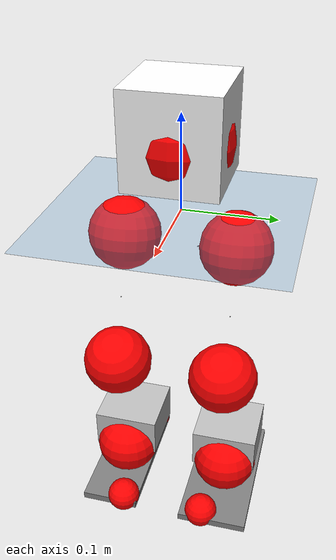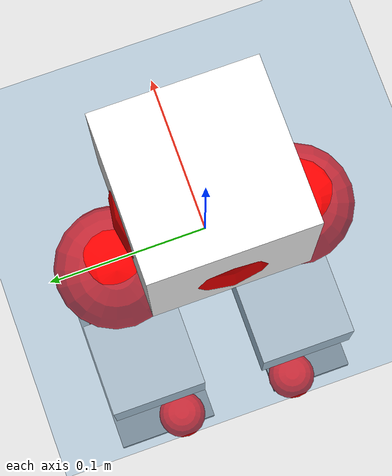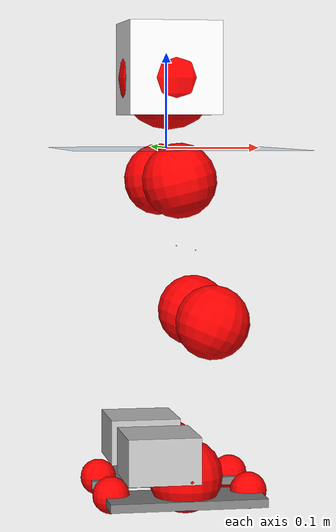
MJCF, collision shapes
<mujoco model="pi_12dof_release_v1">
  <compiler angle="radian" assetdir="assets" balanceinertia="true" inertiafromgeom="false"/>

  <option timestep="0.005" density="1.2" viscosity="2e-05"/>

  <size nkey="1"/>

  <visual>
    <quality shadowsize="8192"/>
    <map shadowclip="0.5"/>
  </visual>

  <default>
    <default class="/">
      <joint armature="0.01" damping="0.01" frictionloss="0.01"/>
      <geom contype="0" conaffinity="0" group="1" solref="-1000 -80"/>
      <site size="0.01 0.005 0.005" group="5"/>
      <general forcelimited="true" biastype="affine" gainprm="20" biasprm="0 -20 -0.5"/>
      <default class="foot">
        <geom size="0.0845 0.036 0.005" type="box" condim="6" group="4" priority="1" friction="0.9 0.2 0.2" solimp="0.015 1 0.005"/>
      </default>
      <default class="reward_collision_sphere">
        <geom group="5" rgba="1 0 0 1"/>
      </default>
    </default>
  </default>

  <asset>
    <texture type="skybox" colorspace="auto" name="//unnamed_texture_0" builtin="gradient" rgb1="0.95 0.95 0.95" rgb2="0.95 0.95 0.95" width="100" height="600"/>
    <texture type="2d" colorspace="auto" name="texplane" builtin="checker" rgb1="0.345 0.575 0.748" rgb2="0.345 0.575 0.748" markrgb="1 1 1" width="512" height="512"/>
    <material name="MatPlane" class="/" texture="texplane" texuniform="true" texrepeat="2 2" specular="0.9"/>
    <mesh name="baselink_1" class="/" file="baselink_1.STL"/>
    <mesh name="r_hip_pitch_link" class="/" file="r_hip_pitch_link.STL"/>
    <mesh name="r_hip_roll_link" class="/" file="r_hip_roll_link.STL"/>
    <mesh name="r_thigh_link" class="/" file="r_thigh_link.STL"/>
    <mesh name="r_calf_link" class="/" file="r_calf_link.STL"/>
    <mesh name="r_ankle_pitch_link" class="/" file="r_ankle_pitch_link.STL"/>
    <mesh name="r_ankle_roll_link" class="/" file="r_ankle_roll_link.STL"/>
    <mesh name="l_hip_pitch_link" class="/" file="l_hip_pitch_link.STL"/>
    <mesh name="l_hip_roll_link" class="/" file="l_hip_roll_link.STL"/>
    <mesh name="l_thigh_link" class="/" file="l_thigh_link.STL"/>
    <mesh name="l_calf_link" class="/" file="l_calf_link.STL"/>
    <mesh name="l_ankle_pitch_link" class="/" file="l_ankle_pitch_link.STL"/>
    <mesh name="l_ankle_roll_link" class="/" file="l_ankle_roll_link.STL"/>
  </asset>

  <worldbody>
    <geom name="floor" class="/" size="100 100 0.125" type="plane" group="0" material="MatPlane"/>
    <light name="toplight_shadow" class="/" pos="0 0 5" dir="0.0990148 0.0990148 -0.990148" type="directional" ambient="0.04 0.04 0.04" diffuse="0.55 0.55 0.55" specular="0.12 0.12 0.12"/>
    <light name="toplight_fill" class="/" pos="0 0 5" dir="0.0990148 0.0990148 -0.990148" type="directional" castshadow="false" ambient="0.04 0.04 0.04" diffuse="0.3 0.3 0.3" specular="0.08 0.08 0.08"/>
    <body name="trunk" pos="0.00240496 0.00012383 -0.00116361" quat="0.999999 -0.00104742 0.000388404 0.000749663">
      <inertial pos="-5.37651e-05 0.00015166 0.0437175" quat="0.692517 0.00881086 0.0130653 0.72123" mass="1.95805" diaginertia="0.0148498 0.00254968 0.00570858"/>
      <joint name="//unnamed_joint_0" type="free"/>
      <geom name="//unnamed_geom_1" class="/" type="mesh" density="0" rgba="1 1 1 1" mesh="baselink_1"/>
      <geom name="//unnamed_geom_2" class="/" size="0.0487308 0.0487308 0.0487308" pos="0 0 0.0850576" type="box" rgba="1 1 1 1"/>
      <geom name="//unnamed_geom_3" class="reward_collision_sphere" size="0.0536038" pos="0 0 0.0744254"/>
      <site name="imu" class="/" pos="0.00163752 0.00839273 0.0136742" size="0.00974615"/>
      <camera name="track" class="/" pos="0 -1.55069 0" quat="0.707107 0.707107 0 0" mode="trackcom"/>
      <camera name="ego_camera" class="/" pos="0.0813962 0 0.19138" quat="-0.5 -0.5 0.5 0.5"/>
      <body name="r_hip_pitch_link" pos="-0.000808798 -0.0167943 -0.0338431" quat="0.99224 -0.000124712 -0.124336 0.000180772">
        <inertial pos="0.000131449 -0.0460767 0.000335374" quat="-0.0168894 0.704593 -0.0277692 0.708867" mass="0.333527" diaginertia="0.000166267 2.76536e-05 0.000112947"/>
        <joint name="r_hip_pitch_joint" class="/" pos="0 0 0" axis="-0.00557761 -0.999934 0.0100899" range="-1.77701 1.2307" armature="0.00983838" damping="0.0264244" frictionloss="0.0110011"/>
        <geom name="//unnamed_geom_4" class="/" type="mesh" density="0" rgba="0.75294 0.75294 0.75294 1" mesh="r_hip_pitch_link"/>
        <geom name="//unnamed_geom_5" class="/" size="0.000487308 0.000487308 0.000487308" type="box" rgba="0.75294 0.75294 0.75294 1"/>
        <body name="r_hip_roll_link" pos="0.00195293 -0.0440956 0.00186673" quat="0.999999 -0.00127315 -0.000296568 0.000501502">
          <inertial pos="0.00114514 -0.0023202 -0.0676217" quat="0.705716 -0.0791784 -0.0828934 0.699159" mass="0.34795" diaginertia="0.000495188 7.52816e-05 0.000173787"/>
          <joint name="r_hip_roll_joint" class="/" pos="0 0 0" axis="-0.999921 0.00386664 0.0119519" range="-0.106726 0.446913" armature="0.00947123" damping="0" frictionloss="0.0110843"/>
          <geom name="//unnamed_geom_6" class="/" type="mesh" density="0" rgba="0.75294 0.75294 0.75294 1" mesh="r_hip_roll_link"/>
          <geom name="//unnamed_geom_7" class="/" size="0.000487308 0.000487308 0.000487308" type="box" rgba="0.75294 0.75294 0.75294 1"/>
          <geom name="//unnamed_geom_8" class="reward_collision_sphere" size="0.0389846"/>
          <body name="r_thigh_link" pos="-0.00167319 -0.00239731 -0.0735323" quat="0.999999 -0.000133227 -4.34137e-05 0.00099493">
            <inertial pos="-0.00246702 0.000320578 -0.0480885" quat="0.735909 0.67708 0.000709212 -0.000866255" mass="0.104167" diaginertia="0.000188848 2.80393e-05 8.05925e-05"/>
            <joint name="r_thigh_joint" class="/" pos="0 0 0" axis="2.35261e-05 -0.000865277 -1" range="-0.355482 0.632877" armature="0.00891377" damping="0.00137504" frictionloss="0.0085868"/>
            <geom name="//unnamed_geom_9" class="/" type="mesh" density="0" rgba="0.75294 0.75294 0.75294 1" mesh="r_thigh_link"/>
            <geom name="//unnamed_geom_10" class="/" size="0.000487308 0.000487308 0.000487308" type="box" rgba="0.75294 0.75294 0.75294 1"/>
            <body name="r_calf_link" pos="-0.00149168 -0.00140803 -0.0776391" quat="0.947508 8.45366e-06 0.319729 -0.00121977">
              <inertial pos="0.00084083 -0.00356369 -0.0746398" quat="0.999967 0.00455313 4.04553e-05 -0.00668278" mass="0.745268" diaginertia="0.00501449 0.000959841 0.000225401"/>
              <joint name="r_calf_joint" class="/" pos="0 0 0" axis="0.010681 -0.999904 0.00885993" range="-1.59978 0.661515" armature="0.0101848" damping="0.00388377" frictionloss="0.011025"/>
              <geom name="//unnamed_geom_11" class="/" type="mesh" density="0" rgba="0.75294 0.75294 0.75294 1" mesh="r_calf_link"/>
              <geom name="//unnamed_geom_12" class="/" size="0.000487308 0.000487308 0.000487308" type="box" rgba="0.75294 0.75294 0.75294 1"/>
              <geom name="//unnamed_geom_13" class="reward_collision_sphere" size="0.0389846"/>
              <body name="r_ankle_pitch_link" pos="0.000975303 -0.00253942 -0.148888" quat="0.980091 -0.000226889 -0.19855 4.41357e-05">
                <inertial pos="0.0069197 0.000160747 0.000382849" quat="-0.00166033 0.70916 -0.0123676 0.704937" mass="0.164536" diaginertia="0.000458563 6.12755e-05 0.000165717"/>
                <joint name="r_ankle_pitch_joint" class="/" pos="0 0 0" axis="-0.00237542 -0.999922 0.012272" range="-1.27774 0.507212" armature="0.00970949" damping="0" frictionloss="0.0106324"/>
                <geom name="//unnamed_geom_14" class="/" type="mesh" density="0" rgba="0.75294 0.75294 0.75294 1" mesh="r_ankle_pitch_link"/>
                <geom name="//unnamed_geom_15" class="/" size="0.03801 0.0389846 0.0243654" type="box" rgba="0.75294 0.75294 0.75294 1"/>
                <body name="r_ankle_roll_link" pos="0.0821146 -0.000277804 -0.00021992" quat="1 -0.000175974 2.64063e-05 -2.26026e-05">
                  <inertial pos="-0.0261218 -0.000123757 -0.0152986" quat="0.564005 0.440102 0.428844 0.551635" mass="0.478598" diaginertia="0.00170188 0.000289531 0.000373089"/>
                  <joint name="r_ankle_roll_joint" class="/" pos="0 0 0" axis="-0.999909 -0.0132836 0.00229765" stiffness="0.00358944" range="-0.203768 0.148914" armature="0.0111151" damping="0.0145652" frictionloss="0.0096943"/>
                  <geom name="//unnamed_geom_16" class="/" type="mesh" density="0" rgba="0.75294 0.75294 0.75294 1" mesh="r_ankle_roll_link"/>
                  <geom name="//unnamed_geom_17" class="/" type="mesh" rgba="0.75294 0.75294 0.75294 1" mesh="r_ankle_roll_link"/>
                  <geom name="right_foot" class="foot" size="0.0823571 0.0335485 0.00446957" pos="-0.0553494 0 -0.0467817"/>
                  <geom name="//unnamed_geom_19" class="reward_collision_sphere" size="0.0389846" pos="-0.0542641 0 -0.0212644"/>
                  <geom name="//unnamed_geom_20" class="reward_collision_sphere" size="0.0194923" pos="0.0162792 0.0155069 -0.0425288"/>
                  <geom name="//unnamed_geom_21" class="reward_collision_sphere" size="0.0194923" pos="-0.130234 0.0155069 -0.0425288"/>
                  <site name="right_foot" class="foot" pos="-0.0553494 0 -0.0467817" size="0.00974615"/>
                </body>
              </body>
            </body>
          </body>
        </body>
      </body>
      <body name="l_hip_pitch_link" pos="0.000608545 0.0186409 -0.0369993" quat="0.992217 9.08894e-05 -0.12452 -2.1325e-05">
        <inertial pos="0.00130154 0.044378 -0.00272785" quat="-0.0427696 0.712646 0.0326825 0.699455" mass="0.368094" diaginertia="0.000189801 2.88845e-05 0.000139752"/>
        <joint name="l_hip_pitch_joint" class="/" pos="0 0 0" axis="-0.012772 0.99991 0.00412083" range="-1.24442 1.74646" armature="0.00957746" damping="0.0166807" frictionloss="0.00960335"/>
        <geom name="//unnamed_geom_22" class="/" type="mesh" density="0" rgba="0.75294 0.75294 0.75294 1" mesh="l_hip_pitch_link"/>
        <geom name="//unnamed_geom_23" class="/" size="0.000487308 0.000487308 0.000487308" type="box" rgba="0.75294 0.75294 0.75294 1"/>
        <body name="l_hip_roll_link" pos="0.000518368 0.0408414 0.00310149" quat="1 -0.000216793 0.00029077 0.000205127">
          <inertial pos="-0.00170825 -0.000214384 -0.0659545" quat="0.699713 -0.0751049 -0.0776529 0.706209" mass="0.368552" diaginertia="0.00050003 7.61617e-05 0.000178188"/>
          <joint name="l_hip_roll_joint" class="/" pos="0 0 0" axis="-0.999998 0.00186151 -0.00118711" range="-0.482556 0.17132" armature="0.00947572" damping="0.00465603" frictionloss="0.00971004"/>
          <geom name="//unnamed_geom_24" class="/" type="mesh" density="0" rgba="0.75294 0.75294 0.75294 1" mesh="l_hip_roll_link"/>
          <geom name="//unnamed_geom_25" class="/" size="0.000487308 0.000487308 0.000487308" type="box" rgba="0.75294 0.75294 0.75294 1"/>
          <geom name="//unnamed_geom_26" class="reward_collision_sphere" size="0.0389846"/>
          <body name="l_thigh_link" pos="0.000400164 3.55925e-05 -0.0758571" quat="1 3.12483e-05 0.000105565 0.000434101">
            <inertial pos="0.000379255 0.00112643 -0.0503014" quat="0.681098 0.732191 -0.000790675 -0.000112012" mass="0.104244" diaginertia="0.000184065 2.6545e-05 7.62015e-05"/>
            <joint name="l_thigh_joint" class="/" pos="0 0 0" axis="0.00220839 -0.00190936 -0.999996" stiffness="0.00330853" range="-0.594337 0.347032" armature="0.0103647" damping="0" frictionloss="0.0104939"/>
            <geom name="//unnamed_geom_27" class="/" type="mesh" density="0" rgba="0.75294 0.75294 0.75294 1" mesh="l_thigh_link"/>
            <geom name="//unnamed_geom_28" class="/" size="0.000487308 0.000487308 0.000487308" type="box" rgba="0.75294 0.75294 0.75294 1"/>
            <body name="l_calf_link" pos="0.000128161 -0.00117846 -0.0738318" quat="0.947513 0.00124549 0.319715 -3.52944e-06">
              <inertial pos="0.00299333 0.00474416 -0.0767559" quat="0.999905 -0.00612782 -0.00388298 0.0117228" mass="0.751793" diaginertia="0.00524794 0.000970963 0.000237489"/>
              <joint name="l_calf_joint" class="/" pos="0 0 0" axis="-0.00694846 0.999974 0.00167042" range="-0.630452 1.61523" armature="0.00956849" damping="0.0103937" frictionloss="0.00840083"/>
              <geom name="//unnamed_geom_29" class="/" type="mesh" density="0" rgba="0.75294 0.75294 0.75294 1" mesh="l_calf_link"/>
              <geom name="//unnamed_geom_30" class="/" size="0.000487308 0.000487308 0.000487308" type="box" rgba="0.75294 0.75294 0.75294 1"/>
              <geom name="//unnamed_geom_31" class="reward_collision_sphere" size="0.0389846"/>
              <body name="l_ankle_pitch_link" pos="0.000598661 0.000987191 -0.151167" quat="0.98007 -1.55963e-05 -0.198651 -3.8924e-05">
                <inertial pos="0.00637704 -0.00092352 -0.000306756" quat="-0.00289062 0.707922 0.00141039 0.706284" mass="0.157078" diaginertia="0.000468909 6.3833e-05 0.000161933"/>
                <joint name="l_ankle_pitch_joint" class="/" pos="0 0 0" axis="-0.00330066 0.999993 0.00164728" range="-0.504526 1.28721" armature="0.00968438" damping="0.00760022" frictionloss="0.0101893"/>
                <geom name="//unnamed_geom_32" class="/" type="mesh" density="0" rgba="0.75294 0.75294 0.75294 1" mesh="l_ankle_pitch_link"/>
                <geom name="//unnamed_geom_33" class="/" size="0.03801 0.0389846 0.0243654" type="box" rgba="0.75294 0.75294 0.75294 1"/>
                <body name="l_ankle_roll_link" pos="0.0809166 0.000988867 0.00134619" quat="1 0.000140432 -0.000159143 -0.000286428">
                  <inertial pos="-0.0290511 -0.000659634 -0.015983" quat="0.562729 0.432894 0.426758 0.560193" mass="0.482821" diaginertia="0.00171729 0.00029204 0.000399464"/>
                  <joint name="l_ankle_roll_joint" class="/" pos="0 0 0" axis="-0.99992 0.00317075 -0.0122238" range="-0.148329 0.174599" armature="0.00976483" damping="0.0229245" frictionloss="0.00947102"/>
                  <geom name="//unnamed_geom_34" class="/" type="mesh" density="0" rgba="0.75294 0.75294 0.75294 1" mesh="l_ankle_roll_link"/>
                  <geom name="//unnamed_geom_35" class="/" type="mesh" rgba="0.75294 0.75294 0.75294 1" mesh="l_ankle_roll_link"/>
                  <geom name="left_foot" class="foot" size="0.0848709 0.0407562 0.00431488" pos="-0.0553494 0 -0.0467817"/>
                  <geom name="//unnamed_geom_37" class="reward_collision_sphere" size="0.0389846" pos="-0.0542641 0 -0.0212644"/>
                  <geom name="//unnamed_geom_38" class="reward_collision_sphere" size="0.0194923" pos="0.0162792 -0.0155069 -0.0425288"/>
                  <geom name="//unnamed_geom_39" class="reward_collision_sphere" size="0.0194923" pos="-0.130234 -0.0155069 -0.0425288"/>
                  <site name="left_foot" class="foot" pos="-0.0553494 0 -0.0467817" size="0.00974615"/>
                </body>
              </body>
            </body>
          </body>
        </body>
      </body>
    </body>
  </worldbody>

  <contact>
    <pair class="/" geom1="floor" geom2="right_foot" name="//unnamed_contact_1"/>
    <pair class="/" geom1="floor" geom2="left_foot" name="//unnamed_contact_0"/>
  </contact>

  <actuator>
    <general name="r_hip_pitch_joint" class="/" joint="r_hip_pitch_joint" forcerange="-20.078 20.078" gainprm="19.7688" biasprm="0 -19.7688 -0.504151"/>
    <general name="r_hip_roll_joint" class="/" joint="r_hip_roll_joint" forcerange="-22.0382 22.0382" gainprm="19.7688" biasprm="0 -19.7688 -0.504151"/>
    <general name="r_thigh_joint" class="/" joint="r_thigh_joint" forcerange="-21.283 21.283" gainprm="19.7688" biasprm="0 -19.7688 -0.504151"/>
    <general name="r_calf_joint" class="/" joint="r_calf_joint" forcerange="-22.3665 22.3665" gainprm="19.7688" biasprm="0 -19.7688 -0.504151"/>
    <general name="r_ankle_pitch_joint" class="/" joint="r_ankle_pitch_joint" forcerange="-19.6389 19.6389" gainprm="19.7688" biasprm="0 -19.7688 -0.504151"/>
    <general name="r_ankle_roll_joint" class="/" joint="r_ankle_roll_joint" forcerange="-18.3636 18.3636" gainprm="19.7688" biasprm="0 -19.7688 -0.504151"/>
    <general name="l_hip_pitch_joint" class="/" joint="l_hip_pitch_joint" forcerange="-20.2701 20.2701" gainprm="19.7688" biasprm="0 -19.7688 -0.504151"/>
    <general name="l_hip_roll_joint" class="/" joint="l_hip_roll_joint" forcerange="-19.2776 19.2776" gainprm="19.7688" biasprm="0 -19.7688 -0.504151"/>
    <general name="l_thigh_joint" class="/" joint="l_thigh_joint" forcerange="-21.1198 21.1198" gainprm="19.7688" biasprm="0 -19.7688 -0.504151"/>
    <general name="l_calf_joint" class="/" joint="l_calf_joint" forcerange="-20.1168 20.1168" gainprm="19.7688" biasprm="0 -19.7688 -0.504151"/>
    <general name="l_ankle_pitch_joint" class="/" joint="l_ankle_pitch_joint" forcerange="-21.6065 21.6065" gainprm="19.7688" biasprm="0 -19.7688 -0.504151"/>
    <general name="l_ankle_roll_joint" class="/" joint="l_ankle_roll_joint" forcerange="-20.2186 20.2186" gainprm="19.7688" biasprm="0 -19.7688 -0.504151"/>
  </actuator>

  <sensor>
    <gyro site="imu" name="imu_angular_velocity"/>
    <velocimeter site="imu" name="imu_linear_velocity"/>
    <framelinvel objtype="site" objname="left_foot" name="left_foot_global_linear_velocity"/>
    <framelinvel objtype="site" objname="right_foot" name="right_foot_global_linear_velocity"/>
  </sensor>

  <keyframe>
    <key name="home" qpos="0 0 0.291 1 0 0 0 0.4 0 0 -0.8 0.4 0 -0.4 0 0 0.8 -0.4 0"/>
  </keyframe>
</mujoco>
